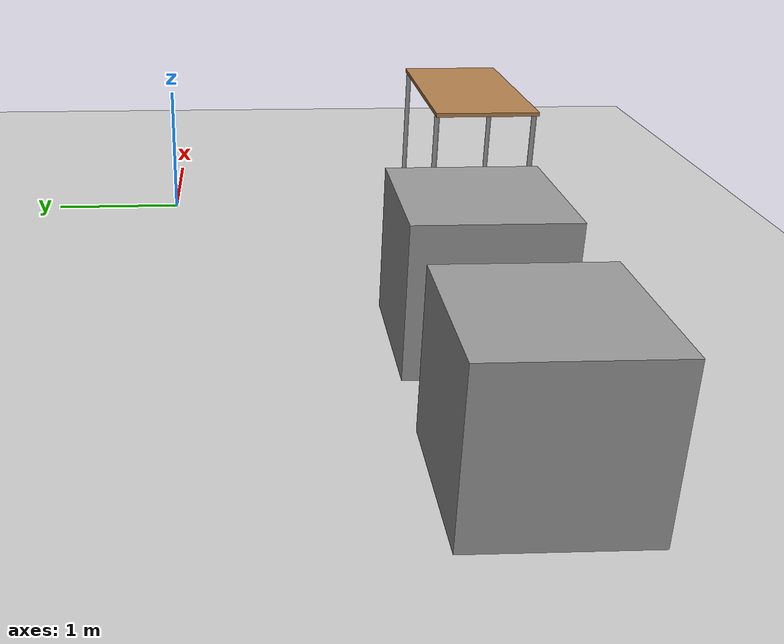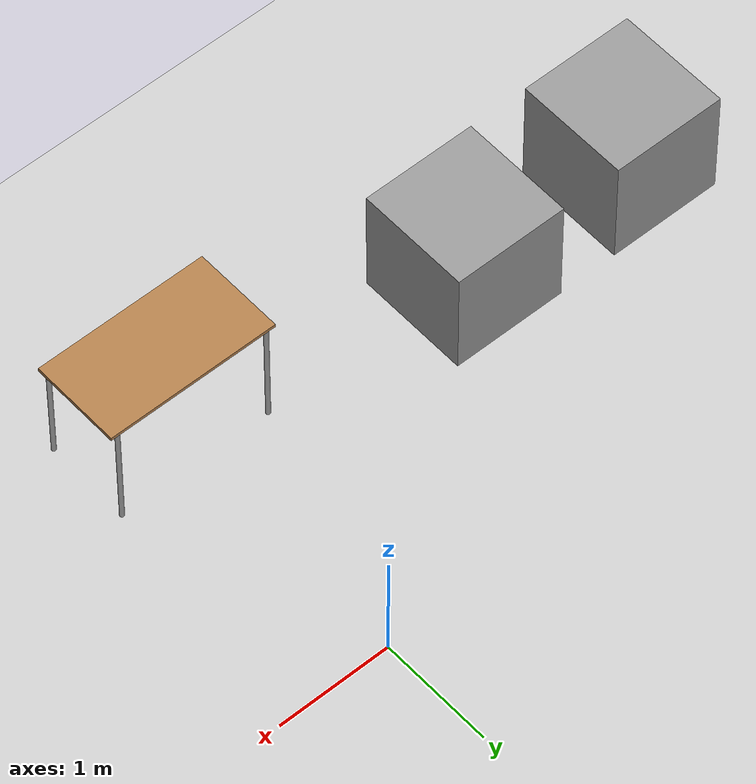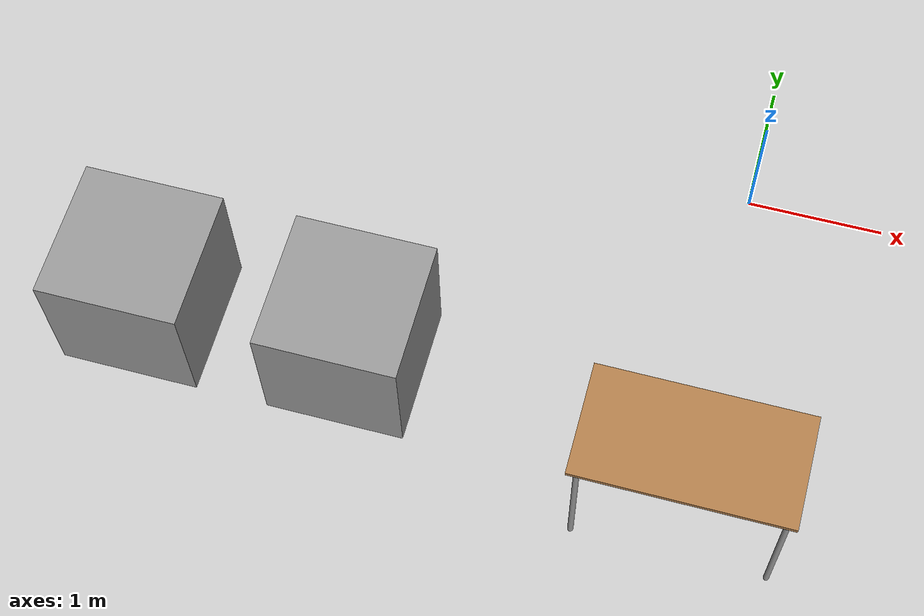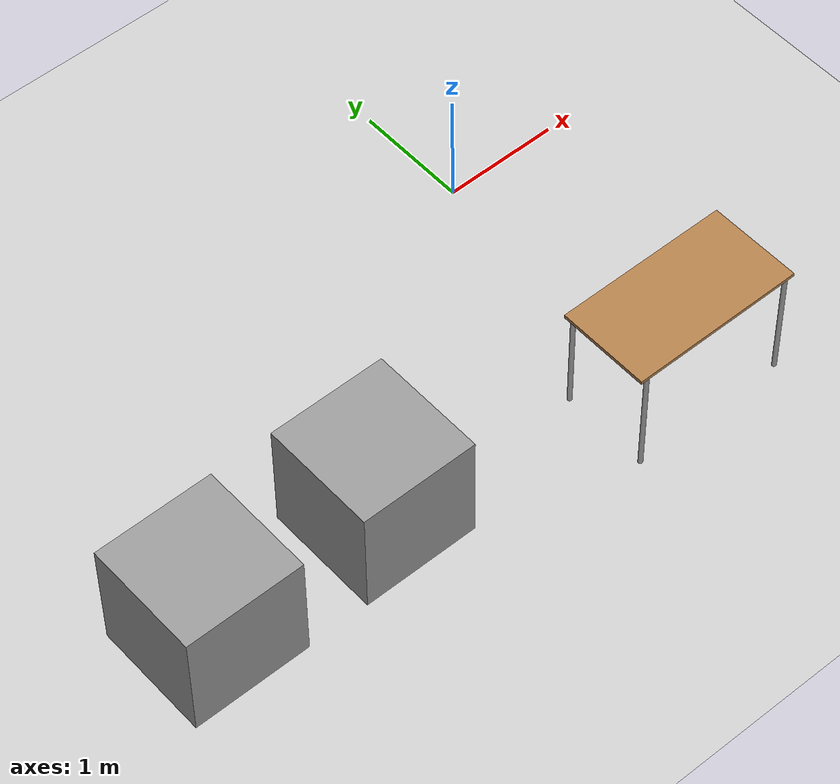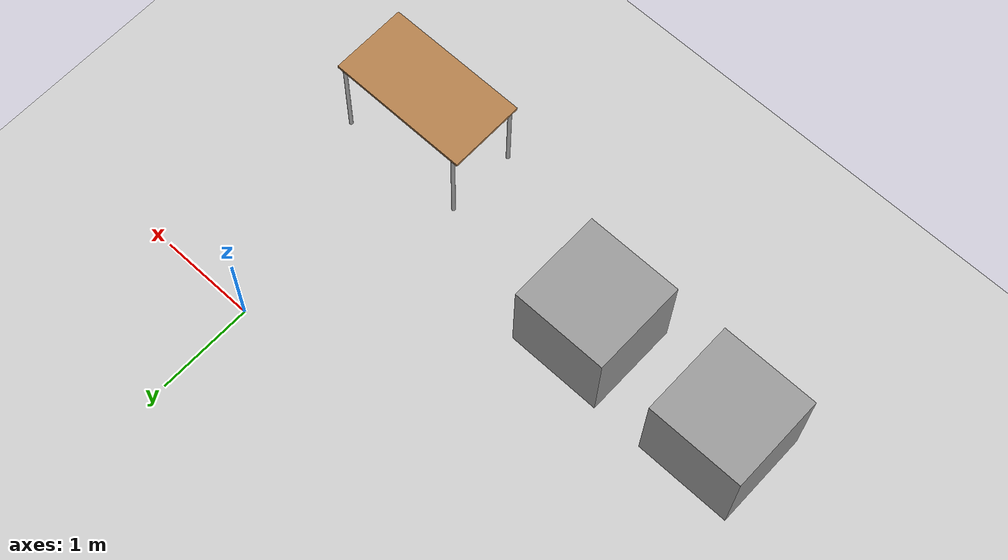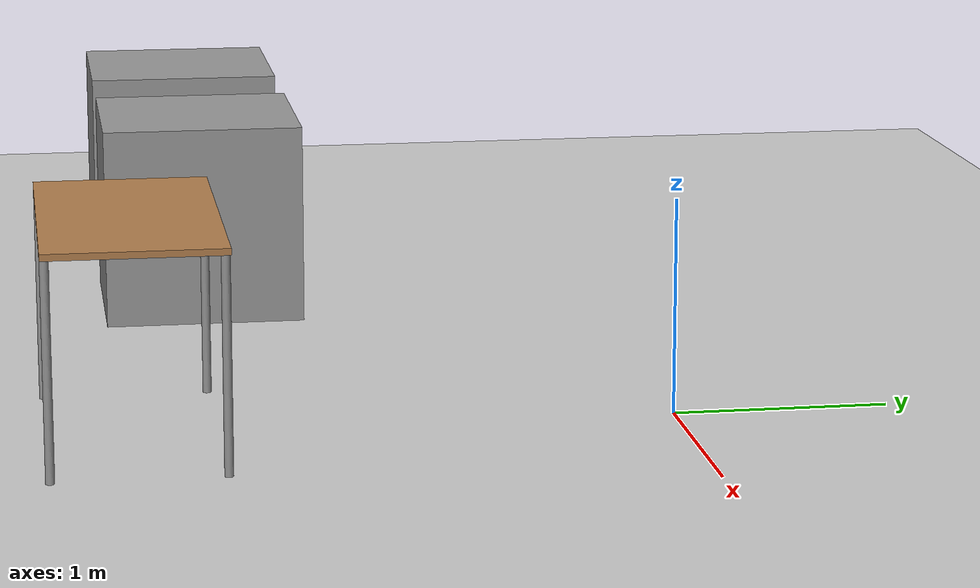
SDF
<sdf version="1.4">
 <world name="default">
  <light name="sun" type="directional">
   <pose>0 0 10 0 -0 0</pose>
   <diffuse>0.8 0.8 0.8 1</diffuse>
   <specular>0.1 0.1 0.1 1</specular>
   <attenuation>
    <range>1000</range>
    <constant>0.9</constant>
    <linear>0.01</linear>
    <quadratic>0.001</quadratic>
   </attenuation>
   <direction>-0.5 0.5 -1</direction>
  </light>
  <model name="ground_plane">
   <static>1</static>
   <link name="link">
    <collision name="collision">
     <geometry><plane><normal>0 0 1</normal><size>100 100</size></plane></geometry>
     <surface><friction><ode><mu>100</mu><mu2>50</mu2></ode></friction></surface>
    </collision>
    <visual name="visual">
     <cast_shadows>0</cast_shadows>
     <geometry><plane><normal>0 0 1</normal><size>100 100</size></plane></geometry>
     <material>
      <script><uri>file://media/materials/scripts/gazebo.material</uri><name>Gazebo/Grey</name></script>
     </material>
    </visual>
    <velocity_decay><linear>0</linear><angular>0</angular></velocity_decay>
   </link>
  </model>
  <physics type="ode">
   <gravity>0 0 -0.4</gravity>
   <real_time_update_rate>1000</real_time_update_rate>
   <max_step_size>0.001</max_step_size>
   <real_time_factor>1</real_time_factor>
  </physics>
  <scene><ambient>0.2 0.2 0.2 1</ambient><background>0.7 0.7 0.7 1</background><shadows>1</shadows></scene>
  <model name="table_0">
   <static>1</static>
   <link name="link">
    <collision name="surface">
     <pose>0 0 1 0 -0 0</pose>
     <geometry><box><size>1.5 0.8 0.03</size></box></geometry>
    </collision>
    <visual name="visual1">
     <pose>0 0 1 0 -0 0</pose>
     <geometry><box><size>1.5 0.8 0.03</size></box></geometry>
     <material>
      <script><uri>file://media/materials/scripts/gazebo.material</uri><name>Gazebo/Wood</name></script>
     </material>
    </visual>
    <collision name="front_left_leg">
     <pose>0.68 0.38 0.5 0 -0 0</pose>
     <geometry><cylinder><radius>0.02</radius><length>1</length></cylinder></geometry>
    </collision>
    <visual name="front_left_leg">
     <pose>0.68 0.38 0.5 0 -0 0</pose>
     <geometry><cylinder><radius>0.02</radius><length>1</length></cylinder></geometry>
     <material>
      <script><uri>file://media/materials/scripts/gazebo.material</uri><name>Gazebo/Grey</name></script>
     </material>
    </visual>
    <collision name="front_right_leg">
     <pose>0.68 -0.38 0.5 0 -0 0</pose>
     <geometry><cylinder><radius>0.02</radius><length>1</length></cylinder></geometry>
    </collision>
    <visual name="front_right_leg">
     <pose>0.68 -0.38 0.5 0 -0 0</pose>
     <geometry><cylinder><radius>0.02</radius><length>1</length></cylinder></geometry>
     <material>
      <script><uri>file://media/materials/scripts/gazebo.material</uri><name>Gazebo/Grey</name></script>
     </material>
    </visual>
    <collision name="back_right_leg">
     <pose>-0.68 -0.38 0.5 0 -0 0</pose>
     <geometry><cylinder><radius>0.02</radius><length>1</length></cylinder></geometry>
    </collision>
    <visual name="back_right_leg">
     <pose>-0.68 -0.38 0.5 0 -0 0</pose>
     <geometry><cylinder><radius>0.02</radius><length>1</length></cylinder></geometry>
     <material>
      <script><uri>file://media/materials/scripts/gazebo.material</uri><name>Gazebo/Grey</name></script>
     </material>
    </visual>
    <collision name="back_left_leg">
     <pose>-0.68 0.38 0.5 0 -0 0</pose>
     <geometry><cylinder><radius>0.02</radius><length>1</length></cylinder></geometry>
    </collision>
    <visual name="back_left_leg">
     <pose>-0.68 0.38 0.5 0 -0 0</pose>
     <geometry><cylinder><radius>0.02</radius><length>1</length></cylinder></geometry>
     <material>
      <script><uri>file://media/materials/scripts/gazebo.material</uri><name>Gazebo/Grey</name></script>
     </material>
    </visual>
    <velocity_decay><linear>0</linear><angular>0</angular></velocity_decay>
   </link>
   <pose>0 -2.46537 0 0 -0 0</pose>
  </model>
  <model name="unit_box_1">
   <pose>-2.47447 -2 0.5 0 -0 0</pose>
   <link name="link">
    <inertial>
     <mass>1</mass>
     <inertia><ixx>1</ixx><ixy>0</ixy><ixz>0</ixz><iyy>1</iyy><iyz>0</iyz><izz>1</izz></inertia>
    </inertial>
    <collision name="collision"><geometry><box><size>1 1 1</size></box></geometry></collision>
    <visual name="visual">
     <geometry><box><size>1 1 1</size></box></geometry>
     <material>
      <script><uri>file://media/materials/scripts/gazebo.material</uri><name>Gazebo/Grey</name></script>
     </material>
    </visual>
    <velocity_decay><linear>0</linear><angular>0</angular></velocity_decay>
   </link>
   <static>0</static>
  </model>
  <model name="unit_box_2">
   <pose>-4 -2 0.5 0 -0 0</pose>
   <link name="link">
    <inertial>
     <mass>1</mass>
     <inertia><ixx>1</ixx><ixy>0</ixy><ixz>0</ixz><iyy>1</iyy><iyz>0</iyz><izz>1</izz></inertia>
    </inertial>
    <collision name="collision"><geometry><box><size>1 1 1</size></box></geometry></collision>
    <visual name="visual">
     <geometry><box><size>1 1 1</size></box></geometry>
     <material>
      <script><uri>file://media/materials/scripts/gazebo.material</uri><name>Gazebo/Grey</name></script>
     </material>
    </visual>
    <velocity_decay><linear>0</linear><angular>0</angular></velocity_decay>
   </link>
   <static>0</static>
  </model>
 </world>
</sdf>
